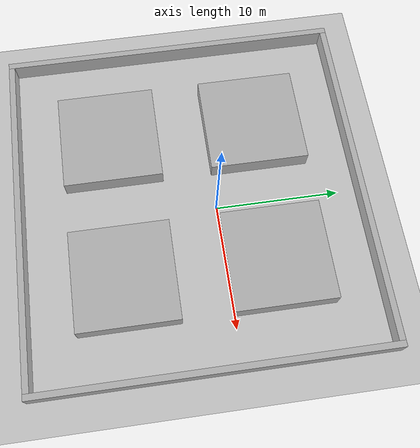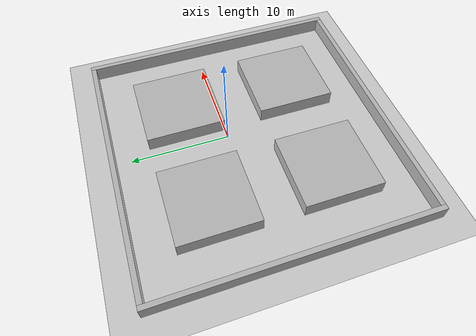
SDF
<?xml version="1.0" ?>
<sdf version="1.4">
  <!-- We use a custom world for the rrbot so that the camera angle is launched correctly -->

  <world name="default">
    <include>
      <uri>model://ground_plane</uri>
    </include>

    <!-- Global light source -->
    <include>
      <uri>model://sun</uri>
    </include>

    <!-- Focus camera on vehicle -->
    <gui fullscreen='0'>
      <camera name='user_camera'>
        <pose>4.927360 -4.376610 3.740080 0.000000 0.275643 2.356190</pose>
        <view_controller>orbit</view_controller>
      </camera>
    </gui>

    <!-- building a testing ground -->
    <model name='section_1'>
      <pose>0 0 0 0 0 0</pose>
      <static>true</static>
        <link name="link1">
          <pose>5 4 0 0 0 0</pose>
          <collision name="collision1">
          	<geometry>
          	  <box>
          	    <size>8 8 3</size>
          	  </box>
          	</geometry>
          </collision>
          <visual name="link1">
          	<geometry>
          	  <box>
          	    <size>8 8 3</size>
          	  </box>
          	</geometry>
          </visual>
        </link>

        <link name="link2">
          <pose>-7 4 0 0 0 0</pose>
          <collision name="collision2">
            <geometry>
              <box>
                <size>8 8 3</size>
              </box>
            </geometry>
          </collision>
          <visual name="link2">
            <geometry>
              <box>
                <size>8 8 3</size>
              </box>
            </geometry>
          </visual>
        </link>

        <link name="link3">
          <pose>5 -8 0 0 0 0</pose>
          <collision name="collision3">
            <geometry>
              <box>
                <size>8 8 3</size>
              </box>
            </geometry>
          </collision>
          <visual name="link3">
            <geometry>
              <box>
                <size>8 8 3</size>
              </box>
            </geometry>
          </visual>
        </link>

        <link name="link4">
          <pose>-7 -8 0 0 0 0</pose>
          <collision name="collision4">
            <geometry>
              <box>
                <size>8 8 3</size>
              </box>
            </geometry>
          </collision>
          <visual name="link4">
            <geometry>
              <box>
                <size>8 8 3</size>
              </box>
            </geometry>
          </visual>
        </link>
     </model>

<model name='section_2'>
      <pose>0 0 0 0 0 0</pose>
      <static>true</static>
        <link name="link1">
          <pose>13 -2 0 0 0 0</pose>
          <collision name="collision1">
            <geometry>
              <box>
                <size>0.5 28 3</size>
              </box>
            </geometry>
          </collision>
          <visual name="link1">
            <geometry>
              <box>
                <size>0.5 28 3</size>
              </box>
            </geometry>
          </visual>
        </link>

        <link name="link2">
          <pose>-15 -2 0 0 0 0</pose>
          <collision name="collision2">
            <geometry>
              <box>
                <size>0.5 28 3</size>
              </box>
            </geometry>
          </collision>
          <visual name="link2">
            <geometry>
              <box>
                <size>0.5 28 3</size>
              </box>
            </geometry>
          </visual>
        </link>

        <link name="link3">
          <pose>-1 -15.75 0 0 0 0</pose>
          <collision name="collision3">
            <geometry>
              <box>
                <size>27.5 0.5 3</size>
              </box>
            </geometry>
          </collision>
          <visual name="link3">
            <geometry>
              <box>
                <size>27.5 0.5 3</size>
              </box>
            </geometry>
          </visual>
        </link>

        <link name="link4">
          <pose>-1 11.75 0 0 0 0</pose>
          <collision name="collision4">
            <geometry>
              <box>
                <size>27.5 0.5 3</size>
              </box>
            </geometry>
          </collision>
          <visual name="link4">
            <geometry>
              <box>
                <size>27.5 0.5 3</size>
              </box>
            </geometry>
          </visual>
        </link>
      </model>

  </world>
</sdf>
